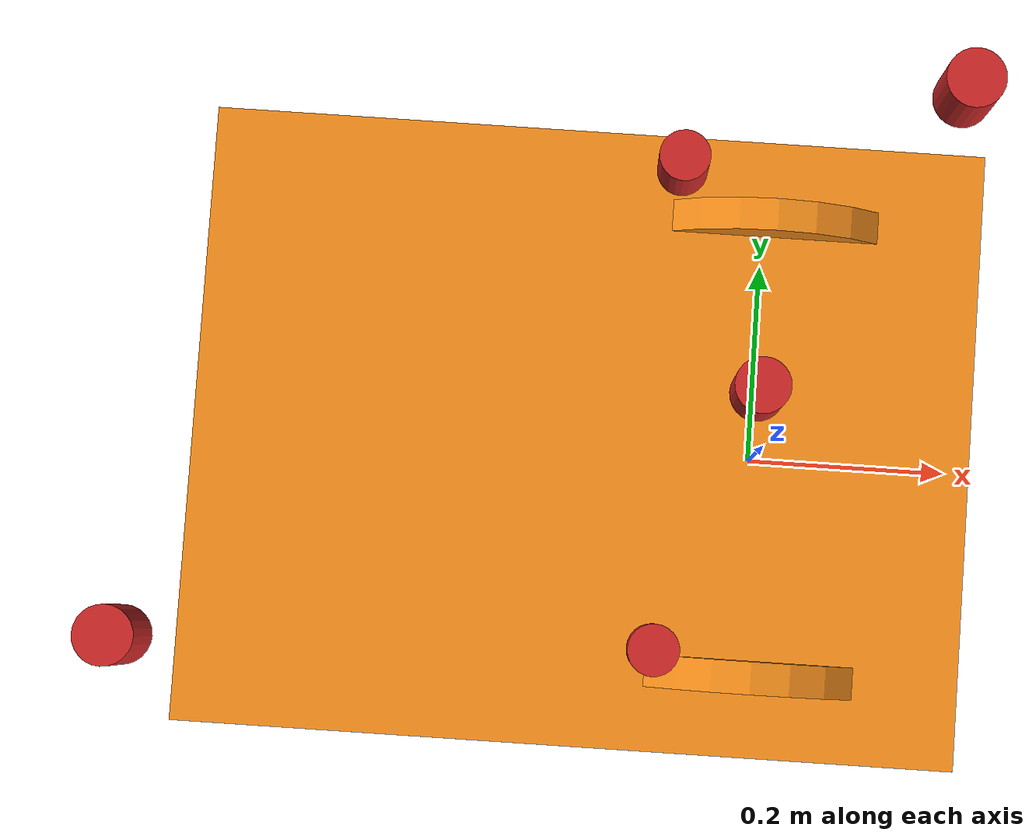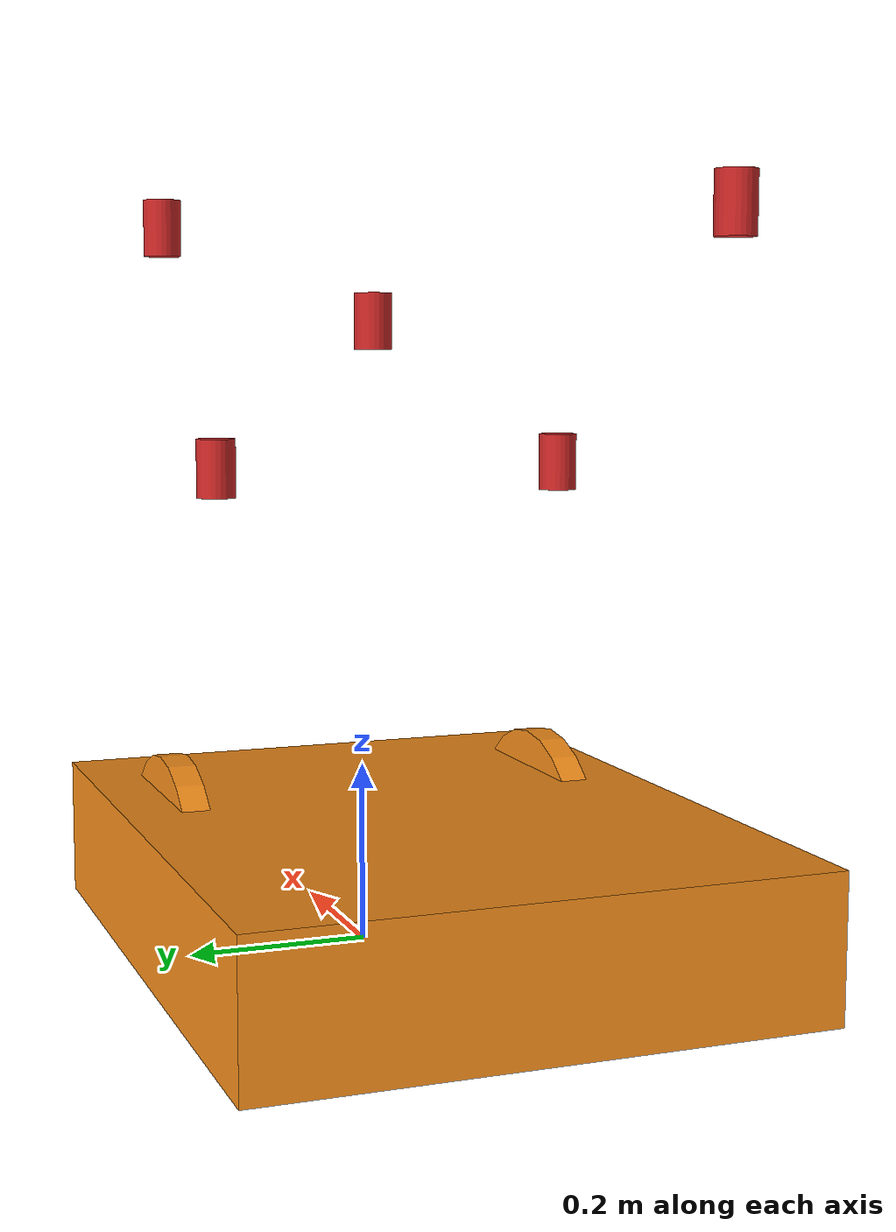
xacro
<?xml version="1.0"?>
<!-- Revolute-Revolute Manipulator -->
<robot name="icart_mini" xmlns:xacro="http://www.ros.org/wiki/xacro">
  <!-- Constants for robot dimensions -->
  <xacro:property name="PI" value="3.1415926535897931"/>

  <!-- Import Rviz colors -->
  <xacro:include filename="$(find arno)/urdf/materials.xacro" />
  <xacro:include filename="$(find arno)/urdf/arno.gazebo"/>

  <link name="base_footprint"/>

  <joint name="base_joint" type="fixed">
    <parent link="base_footprint"/>
    <child link="base_link"/>
    <origin xyz="0.0 0.0 0.010" rpy="0 0 0"/>
  </joint>

  <!-- Base Link -->
  <link name="base_link">
    <collision>
      <origin xyz="-0.17 0 0.1" rpy="0 0 0"/>
      <geometry>
	    <box size=".73 .58 .15"/>
      </geometry>
    </collision>

    <visual>
      <origin xyz="-0.17 0 0.1" rpy="0 0 0"/>
      <geometry>
	    <box size=".73 .58 .15"/>
      </geometry>
      <material name="orange"/>
    </visual>

    <collision name="collision">
      <origin xyz="-0.325 0.0 0.05" rpy="0 1.5707 1.5707"/>
      <geometry>
        <cylinder  length="0.03" radius="0.04625"/>
      </geometry>
    </collision>
    <visual name="visual">
      <origin xyz="-0.325 0.0 0.05" rpy="0 1.5707 1.5707"/>
      <geometry>
        <cylinder  length="0.03" radius="0.04625"/>
      </geometry>
    </visual>

    <inertial>
       <mass value="20" />
       <origin xyz="-0.08 0 0" rpy="0 0 0"/>
       <inertia ixx="1" ixy="0" ixz="0" iyy="1" iyz="0" izz="1" />
    </inertial>
  </link>

  <link name="left_wheel">
    <collision name="collision">
      <origin xyz="0 0.0 0" rpy="0 1.5707 1.5707"/>
      <geometry>
         <cylinder  length="0.03" radius="0.1397"/>
      </geometry>
    </collision>
    <visual name="visual">
      <origin xyz="0 0.0 0" rpy="0 1.5707 1.5707"/>
      <geometry>
        <cylinder  length="0.03" radius="0.1397"/>
      </geometry>
    </visual>
    <inertial>
      <mass value="1" />
      <origin xyz="0 0.0 0"/>
      <inertia ixx="0.1" ixy="0" ixz="0" iyy="0.1" iyz="0" izz="0.1" />
    </inertial>
  </link>

  <joint type="revolute" name="left_wheel_hinge">
    <origin xyz="0 0.215 0.075" rpy="0 0 0"/>
    <child link="left_wheel">left_wheel</child>
    <parent link="base_link">base_link</parent>
    <axis xyz="0 1 0"/>
    <limit effort="100" velocity="100.0"  lower="-5000" upper="5000" />
  </joint>

  <link name="right_wheel">
    <collision name="collision">
      <origin xyz="0 0.0 0" rpy="0 1.5707 1.5707"/>
      <geometry>
         <cylinder  length="0.03" radius="0.1397"/>
      </geometry>
    </collision>
    <visual name="visual">
      <origin xyz="0 0.0 0" rpy="0 1.5707 1.5707"/>
      <geometry>
        <cylinder  length="0.03" radius="0.1397"/>
      </geometry>
    </visual>
    <inertial>
      <mass value="1" />
      <origin xyz="0 0.0 0"/>
      <inertia ixx="0.1" ixy="0" ixz="0" iyy="0.1" iyz="0" izz="0.1" />
    </inertial>
  </link>

  <joint type="revolute" name="right_wheel_hinge">
    <origin xyz="0 -0.215 0.075" rpy="0 0 0"/>
    <child link="right_wheel">right_wheel</child>
    <parent link="base_link">base_link</parent>
    <axis xyz="0 1 0"/>
    <limit effort="100" velocity="100.0"  lower="-5000" upper="5000" />
  </joint>

  <transmission name="tran1">
    <type>transmission_interface/SimpleTransmission</type>
    <joint name="left_wheel_hinge">
      <hardwareInterface>VelocityJointInterface</hardwareInterface>
    </joint>
    <actuator name="left_motor">
      <hardwareInterface>VelocityJointInterface</hardwareInterface>
      <mechanicalReduction>1</mechanicalReduction>
    </actuator>
  </transmission>

  <transmission name="tran2">
    <type>transmission_interface/SimpleTransmission</type>
    <joint name="right_wheel_hinge">
      <hardwareInterface>VelocityJointInterface</hardwareInterface>
    </joint>
    <actuator name="right_motor">
      <hardwareInterface>VelocityJointInterface</hardwareInterface>
      <mechanicalReduction>1</mechanicalReduction>
    </actuator>
  </transmission>

  <joint name="base_scan_joint" type="fixed">
    <parent link="base_link"/>
    <child link="base_scan"/>
    <origin xyz="0.0 0.0 0.3" rpy="0 0 0"/>
  </joint>
  <link name="base_scan"/>

  <joint name="laser_joint1" type="fixed">
    <parent link="base_link"/>
    <child  link="laser1"/>
    <origin xyz="0.08 0.20 0.78" rpy="0 0 0.785"/>
  </joint>
  <link name="laser1">
    <visual>
      <origin xyz="0 0 0" rpy="0 0 0" />
      <geometry>
        <cylinder radius="0.02" length="0.06" />
      </geometry>
      <material name="red" />
    </visual>
    <collision>
      <origin xyz="0 0 0" rpy="0 0 0"/>
      <geometry>
        <cylinder radius="0.02" length="0.06" />
      </geometry>
    </collision>
  </link>

  <joint name="laser_joint2" type="fixed">
    <parent link="base_link"/>
    <child  link="laser2"/>
    <origin xyz="-0.46 -0.20 0.78" rpy="0 0 -2.356"/>
  </joint>
  <link name="laser2">
    <visual>
      <origin xyz="0 0 0" rpy="0 0 0" />
      <geometry>
        <cylinder radius="0.02" length="0.06" />
      </geometry>
      <material name="red" />
    </visual>
    <collision>
      <origin xyz="0 0 0" rpy="0 0 0"/>
      <geometry>
        <cylinder radius="0.02" length="0.06" />
      </geometry>
    </collision>
  </link>

  <joint name="laser_joint3" type="fixed">
    <parent link="base_link"/>
    <child  link="laser3"/>
    <origin xyz="-0.10 -0.19 0.53" rpy="0 0 -1.57"/>
  </joint>
  <link name="laser3">
    <visual>
      <origin xyz="0 0 0" rpy="0 0 0" />
      <geometry>
        <cylinder radius="0.02" length="0.06" />
      </geometry>
      <material name="red" />
    </visual>
    <collision>
      <origin xyz="0 0 0" rpy="0 0 0"/>
      <geometry>
        <cylinder radius="0.02" length="0.06" />
      </geometry>
    </collision>
  </link>

  <joint name="laser_joint4" type="fixed">
    <parent link="base_link"/>
    <child  link="laser4"/>
    <origin xyz="-0.10 0.19 0.53" rpy="0 0 1.57"/>
  </joint>
  <link name="laser4">
    <visual>
      <origin xyz="0 0 0" rpy="0 0 0" />
      <geometry>
        <cylinder radius="0.02" length="0.06" />
      </geometry>
      <material name="red" />
    </visual>
    <collision>
      <origin xyz="0 0 0" rpy="0 0 0"/>
      <geometry>
        <cylinder radius="0.02" length="0.06" />
      </geometry>
    </collision>
  </link>

  <joint name="laser_joint5" type="fixed">
    <parent link="base_link"/>
    <child  link="laser5"/>
    <origin xyz="-0.04 0.0 0.68" rpy="3.14 0 0"/>
  </joint>
  <link name="laser5">
    <visual>
      <origin xyz="0 0 0" rpy="0 0 0" />
      <geometry>
        <cylinder radius="0.02" length="0.06" />
      </geometry>
      <material name="red" />
    </visual>
    <collision>
      <origin xyz="0 0 0" rpy="0 0 0"/>
      <geometry>
        <cylinder radius="0.02" length="0.06" />
      </geometry>
    </collision>
  </link>
</robot>
